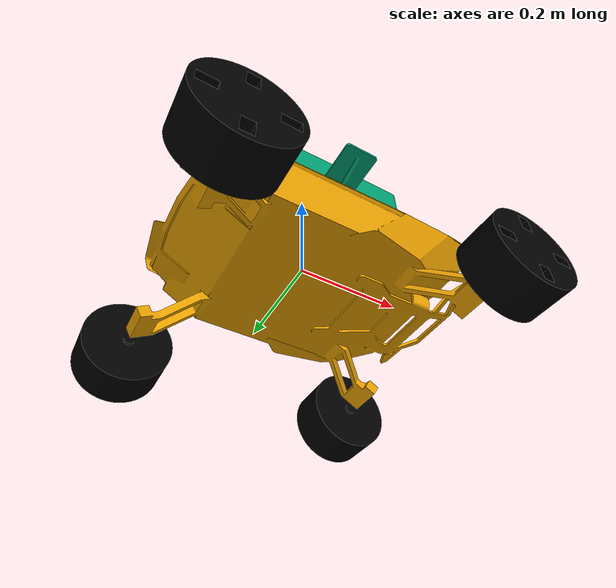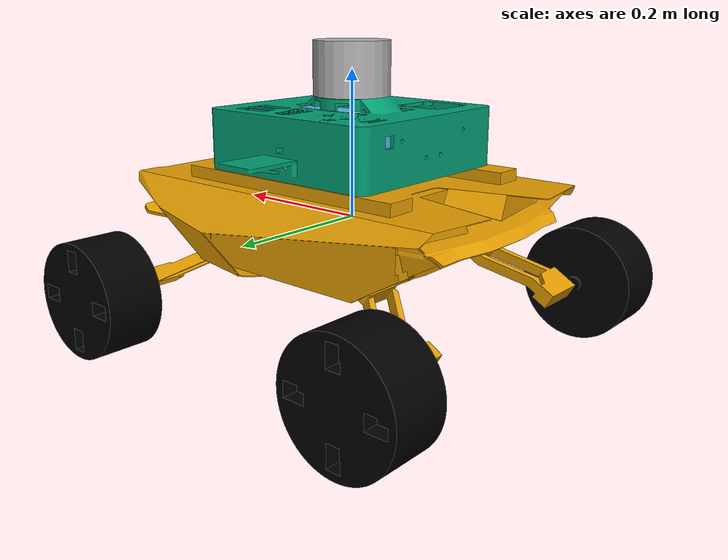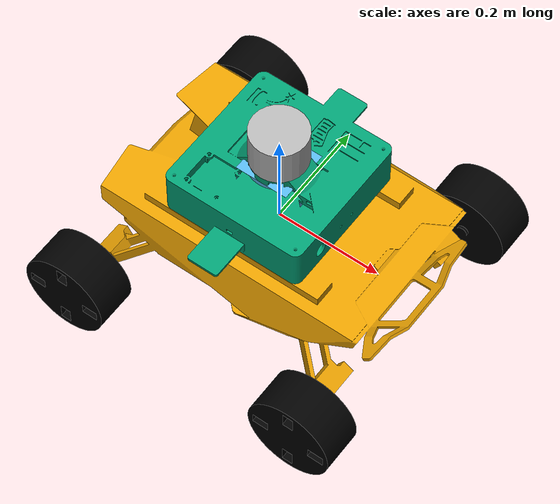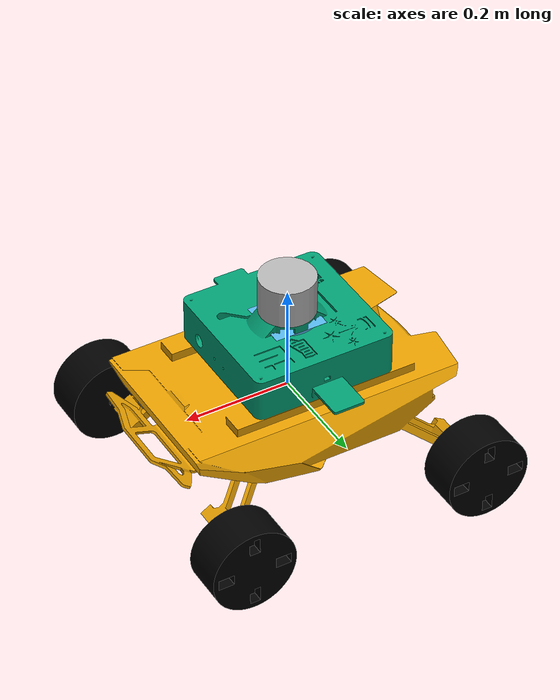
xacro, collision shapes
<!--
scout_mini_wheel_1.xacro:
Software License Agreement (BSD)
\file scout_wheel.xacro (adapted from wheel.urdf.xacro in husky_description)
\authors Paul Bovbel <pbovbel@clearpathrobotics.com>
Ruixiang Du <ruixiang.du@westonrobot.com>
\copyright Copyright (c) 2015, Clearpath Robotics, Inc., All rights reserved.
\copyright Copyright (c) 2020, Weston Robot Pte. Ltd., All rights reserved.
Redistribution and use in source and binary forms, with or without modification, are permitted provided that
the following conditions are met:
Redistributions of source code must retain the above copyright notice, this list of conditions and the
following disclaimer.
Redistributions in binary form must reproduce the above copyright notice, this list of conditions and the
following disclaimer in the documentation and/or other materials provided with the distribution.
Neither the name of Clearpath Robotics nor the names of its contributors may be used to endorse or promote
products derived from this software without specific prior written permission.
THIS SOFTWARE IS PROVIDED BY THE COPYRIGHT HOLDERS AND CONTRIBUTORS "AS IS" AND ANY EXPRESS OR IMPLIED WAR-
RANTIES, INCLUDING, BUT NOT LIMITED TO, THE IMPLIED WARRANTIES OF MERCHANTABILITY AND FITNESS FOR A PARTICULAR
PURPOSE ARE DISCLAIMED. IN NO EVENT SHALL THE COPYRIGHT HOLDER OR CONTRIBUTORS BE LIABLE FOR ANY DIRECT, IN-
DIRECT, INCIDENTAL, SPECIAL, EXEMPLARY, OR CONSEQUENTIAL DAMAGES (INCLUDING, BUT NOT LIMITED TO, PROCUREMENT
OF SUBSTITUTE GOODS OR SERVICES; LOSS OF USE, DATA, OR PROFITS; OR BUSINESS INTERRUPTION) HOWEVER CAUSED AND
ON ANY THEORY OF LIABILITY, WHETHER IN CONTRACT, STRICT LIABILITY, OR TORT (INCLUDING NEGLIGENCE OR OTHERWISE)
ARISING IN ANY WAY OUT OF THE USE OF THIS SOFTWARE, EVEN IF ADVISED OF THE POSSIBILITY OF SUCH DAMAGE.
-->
<?xml version="1.0"?>

<robot name="scout_mini"
    xmlns:xacro="http://ros.org/wiki/xacro">

    <xacro:arg name="robot_namespace" default="/" />
    <xacro:arg name="urdf_extras" default="empty.urdf" />

    <xacro:include filename="$(find scout_description)/urdf/scout_mini_wheel_1.xacro" />
    <xacro:include filename="$(find scout_description)/urdf/scout_mini_wheel_2.xacro" />
    <xacro:include filename="$(find scout_description)/urdf/scout_mini_wheel_3.xacro" />
    <xacro:include filename="$(find scout_description)/urdf/scout_mini_wheel_4.xacro" />
    <xacro:include filename="$(find scout_description)/urdf/box_agile.xacro"/>

    <!-- Variables -->
    <xacro:property name="M_PI" value="3.14159"/>

    <!-- Vehicle Geometries -->
    <xacro:property name="base_x_size" value="0.6200000" />
    <xacro:property name="base_y_size" value="0.585000" />
    <xacro:property name="base_z_size" value="0.235000" />

    <xacro:property name="wheelbase" value="0.463951"/>
    <xacro:property name="track" value="0.416503"/>
    <xacro:property name="wheel_vertical_offset" value="-0.100998" />

    <xacro:property name="wheel_length" value="0.8e-01" />
    <xacro:property name="wheel_radius" value="1.600e-01" />

    <!-- Base link -->
    <link name="base_link">
        <visual>
            <origin
                    xyz="0 0 0.0"
                    rpy="0 0 -1.57" />
            <geometry>
                <mesh filename="package://scout_description/meshes/scout_simple.stl" scale="0.001 0.001 0.001" />
            </geometry>
        </visual>
        <collision>
            <origin
                    xyz="0 0 0"
                    rpy="0 0 -1.57" />
          <geometry>
            <mesh
              filename="package://scout_description/meshes/scout_simple.stl" scale="0.001 0.001 0.001" />
          </geometry>
        </collision>
    </link>

    <link name="inertial_link">
        <inertial>
            <mass value="60" />
            <origin xyz="0.0 0.0 0.0" />
            <inertia ixx="2.288641" ixy="0" ixz="0" iyy="5.103976" iyz="0" izz="3.431465" />
        </inertial>
    </link>

    <joint name="inertial_joint" type="fixed">
        <origin xyz="0 0 0" rpy="0 0 0" />
        <parent link="base_link" />
        <child link="inertial_link" />
    </joint>

    <!-- For testing, hang the robot up in the air -->

    <!-- Agile Box initialization -->
    <xacro:box_agile>
    </xacro:box_agile>

    <!-- Scout wheel macros -->
    <!-- wheel labeled from 0 to 3, conter-clockwise, starting from front right wheel -->
    <!-- motor 1 and 2 (left side) are mechanically installed in a reversed direction -->

    <xacro:scout_mini_wheel_1 wheel_prefix="front_left">
        <origin xyz="${wheelbase/2} ${track/2} ${wheel_vertical_offset}" rpy="-1.57 0 0" />
    </xacro:scout_mini_wheel_1>

    <xacro:scout_mini_wheel_2 wheel_prefix="rear_left">
        <origin xyz="${-wheelbase/2} ${track/2} ${wheel_vertical_offset}" rpy="-1.57 0 0" />
    </xacro:scout_mini_wheel_2>
    <xacro:scout_mini_wheel_3 wheel_prefix="front_right">
        <origin xyz="${wheelbase/2} ${-track/2} ${wheel_vertical_offset+0.001}" rpy="1.57 0 0" />
    </xacro:scout_mini_wheel_3>
    <xacro:scout_mini_wheel_4 wheel_prefix="rear_right">
        <origin xyz="${-wheelbase/2} ${-track/2} ${wheel_vertical_offset+0.001}" rpy="1.57 0 0" />
    </xacro:scout_mini_wheel_4>

    <!-- Additional definitions -->
    <xacro:include filename="$(arg urdf_extras)" />

    <!-- Gazebo definitions  -->
    <xacro:include filename="$(find scout_description)/urdf/scout_mini.gazebo" />

  <xacro:arg name="gpu" default="false"/>
  <xacro:property name="gpu" value="$(arg gpu)" />
  <xacro:arg name="organize_cloud" default="false"/>
  <xacro:property name="organize_cloud" value="$(arg organize_cloud)" />

  <!-- Velodyne URDF, plugin, etc -->
  <xacro:include filename="$(find velodyne_description)/urdf/VLP-16.urdf.xacro"/>
  <xacro:VLP-16 parent="base_link" name="velodyne" topic="/velodyne_points" organize_cloud="${organize_cloud}" hz="10" samples="440" gpu="${gpu}">
    <origin xyz="0 0 0.1655" rpy="0 0 0" />
  </xacro:VLP-16>
    <!-- Gazebo requires the velodyne_gazebo_plugins package -->
<!-- IMU -->
<link name="imu_link">
  <inertial>
    <mass value="0.001"/>
    <origin rpy="0 0 0" xyz="0 0 0"/>
    <inertia ixx="0.0001" ixy="0" ixz="0" iyy="0.0001" iyz="0" izz="0.0001"/>
  </inertial>

  <visual>
    <origin rpy="0 0 0" xyz="0 0 0"/>
    <geometry>
      <box size="0.1 0.1 0.1"/>
    </geometry>
  </visual>

  <collision>
    <origin rpy="0 0 0" xyz="0 0 0"/>
    <geometry>
      <box size="0.1 0.1 0.1"/>
    </geometry>
  </collision>
</link>

<!-- IMU Joint -->
  <joint name="imu_joint" type="fixed">
    <axis xyz="1 0 0"/>
    <origin xyz="0 0 0.1"/>
    <parent link="base_link"/>
    <child link="imu_link"/>
  </joint>

    <gazebo>
    <plugin name="imu_controller" filename="libhector_gazebo_ros_imu.so">
      <robotNamespace>/</robotNamespace>
      <updateRate>50.0</updateRate>
      <bodyName>imu_link</bodyName>
      <topicName>imu/data</topicName>
      <accelDrift>0.005 0.005 0.005</accelDrift>
      <accelGaussianNoise>0.005 0.005 0.005</accelGaussianNoise>
      <rateDrift>0.005 0.005 0.005 </rateDrift>
      <rateGaussianNoise>0.005 0.005 0.005 </rateGaussianNoise>
      <headingDrift>0.005</headingDrift>
      <headingGaussianNoise>0.005</headingGaussianNoise>
    </plugin>
    </gazebo>

</robot>

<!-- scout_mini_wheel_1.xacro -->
<robot xmlns:xacro="http://ros.org/wiki/xacro" name="scout_wheel">

    <xacro:macro name="scout_mini_wheel_1" params="wheel_prefix *joint_pose">
        <link name="${wheel_prefix}_wheel_link">
            <inertial>
                <mass value="3" />
                <origin xyz="0 0 0" />
                <inertia ixx="0.7171" ixy="0" ixz="0" iyy="0.7171" iyz="0" izz="0.1361" />
            </inertial>
            <visual>
                <origin xyz="0 0 0" rpy="0 0 0" />
                <geometry>
                    <mesh filename="package://scout_description/meshes/wheel_simple_short.stl" scale="0.001 0.001 0.001" />
                </geometry>
                <material name="black">
                  <color rgba="0 0 0 1"/>
                </material>
            </visual>
            <collision>
              <origin
                xyz="0 0 0"
                rpy="0 0 0" />
              <geometry>
                <mesh
                  filename="package://scout_description/meshes/wheel_simple_short.stl" scale="0.001 0.001 0.001" />
              </geometry>
              <material name="black">
                <color rgba="0 0 0 1"/>
              </material>
            </collision>
        </link>

        <joint name="${wheel_prefix}_wheel" type="continuous">
            <parent link="base_link"/>
            <child link="${wheel_prefix}_wheel_link"/>
            <xacro:insert_block name="joint_pose"/>
            <axis xyz="0 0 -1" rpy="0 0 0" />
        </joint>
    </xacro:macro>

</robot>

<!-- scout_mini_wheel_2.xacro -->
<robot xmlns:xacro="http://ros.org/wiki/xacro" name="scout_wheel">

    <xacro:macro name="scout_mini_wheel_2" params="wheel_prefix *joint_pose">
        <link name="${wheel_prefix}_wheel_link">
            <inertial>
                <mass value="3" />
                <origin xyz="0 0 0" />
                <inertia ixx="0.7171" ixy="0" ixz="0" iyy="0.7171" iyz="0" izz="0.1361" />
            </inertial>
            <visual>
                <origin xyz="0 0 0" rpy="0 0 0" />
                <geometry>
                    <mesh filename="package://scout_description/meshes/wheel_simple_short.stl" scale="0.001 0.001 0.001" />
                </geometry>
                <material name="black">
                  <color rgba="0 0 0 1"/>
                </material>
            </visual>
            <collision>
              <origin
                xyz="0 0 0"
                rpy="0 0 0" />
              <geometry>
                <mesh
                  filename="package://scout_description/meshes/wheel_simple_short.stl" scale="0.001 0.001 0.001" />
              </geometry>
              <material name="black">
                  <color rgba="0 0 0 1"/>
                </material>
            </collision>
        </link>

        <joint name="${wheel_prefix}_wheel" type="continuous">
            <parent link="base_link"/>
            <child link="${wheel_prefix}_wheel_link"/>
            <xacro:insert_block name="joint_pose"/>
            <axis xyz="0 0 -1" rpy="0 0 0" />
        </joint>
    </xacro:macro>

</robot>

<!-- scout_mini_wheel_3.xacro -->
<robot xmlns:xacro="http://ros.org/wiki/xacro" name="scout_wheel">

    <xacro:macro name="scout_mini_wheel_3" params="wheel_prefix *joint_pose">
        <link name="${wheel_prefix}_wheel_link">
            <inertial>
                <mass value="3" />
                <origin xyz="0 0 0" />
                <inertia ixx="0.7171" ixy="0" ixz="0" iyy="0.7171" iyz="0" izz="0.1361" />
            </inertial>
            <visual>
                <origin xyz="0 0 0" rpy="0 0 0" />
                <geometry>
                    <mesh filename="package://scout_description/meshes/wheel_simple_short.stl" scale="0.001 0.001 0.001" />
                </geometry>
                <material name="black">
                  <color rgba="0 0 0 1"/>
                </material>
            </visual>
            <collision>
              <origin
                xyz="0 0 0"
                rpy="0 0 0" />
              <geometry>
                <mesh
                  filename="package://scout_description/meshes/wheel_simple_short.stl" scale="0.001 0.001 0.001" />
              </geometry>
              <material name="black">
                  <color rgba="0 0 0 1"/>
                </material>
            </collision>
        </link>

        <joint name="${wheel_prefix}_wheel" type="continuous">
            <parent link="base_link"/>
            <child link="${wheel_prefix}_wheel_link"/>
            <xacro:insert_block name="joint_pose"/>
            <axis xyz="0 0 -1" rpy="0 0 0" />
        </joint>
    </xacro:macro>

</robot>

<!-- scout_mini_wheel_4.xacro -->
<robot xmlns:xacro="http://ros.org/wiki/xacro" name="scout_wheel">

    <xacro:macro name="scout_mini_wheel_4" params="wheel_prefix *joint_pose">
        <link name="${wheel_prefix}_wheel_link">
        <inertial>
            <mass value="3" />
            <origin xyz="0 0 0" />
            <inertia ixx="0.7171" ixy="0" ixz="0" iyy="0.7171" iyz="0" izz="0.1361" />
        </inertial>
        <visual>
            <origin xyz="0 0 0" rpy="0 0 0" />
            <geometry>
                <mesh filename="package://scout_description/meshes/wheel_simple_short.stl" scale="0.001 0.001 0.001" />
            </geometry>
            <material name="black">
                  <color rgba="0 0 0 1"/>
                </material>
        </visual>
            <collision>
              <origin
                xyz="0 0 0"
                rpy="0 0 0" />
              <geometry>
                <mesh
                  filename="package://scout_description/meshes/wheel_simple_short.stl" scale="0.001 0.001 0.001" />
              </geometry>
              <material name="black">
                  <color rgba="0 0 0 1"/>
                </material>
            </collision>
        </link>

        <joint name="${wheel_prefix}_wheel" type="continuous">
            <parent link="base_link"/>
            <child link="${wheel_prefix}_wheel_link"/>
            <xacro:insert_block name="joint_pose"/>
            <axis xyz="0 0 -1" rpy="0 0 0" />
        </joint>
    </xacro:macro>

</robot>

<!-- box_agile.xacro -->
<robot xmlns:xacro="http://ros.org/wiki/xacro" name="box_agile">

<xacro:macro name="box_agile">
    <link name="core_box_base_link">
        <visual>
            <origin xyz="0 0 0.0219"
                    rpy="1.57 0 1.57" />
            <geometry>
                <mesh filename="package://scout_description/meshes/box_agile.stl" scale="0.001 0.001 0.001"/>
            </geometry>
        </visual>
        <collision>
        <origin
            xyz="0 0 0.0219"
            rpy="1.57 0 1.57" />
        <geometry>
            <mesh
            filename="package://scout_description/meshes/box_agile.stl" scale="0.001 0.001 0.001"/>
        </geometry>
        </collision>
    </link>

    <joint name="box_fix_joint" type="fixed">
        <origin
            xyz="0 0 0.0219"
            rpy="0 0 0" />
        <parent link="base_link"/>
        <child link="core_box_base_link"/>
    </joint>
</xacro:macro>

</robot>

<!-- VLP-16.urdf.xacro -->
<robot xmlns:xacro="http://www.ros.org/wiki/xacro" name="VLP-16">
  <xacro:property name="M_PI" value="3.1415926535897931" />
  <xacro:macro name="VLP-16" params="*origin is_sim:=true parent:=base_link name:=velodyne tf_prefix:='' topic:=/velodyne_points organize_cloud:=false hz:=10 lasers:=16 samples:=1875 collision_range:=0.3 min_range:=0.0 max_range:=100.0 noise:=0.008 min_angle:=-${M_PI} max_angle:=${M_PI} gpu:=false">

    <joint name="${name}_base_mount_joint" type="fixed">
      <xacro:insert_block name="origin" />
      <parent link="${parent}"/>
      <child link="${name}_base_link"/>
    </joint>

    <link name="${name}_base_link">
      <inertial>
        <mass value="0.83"/>
        <origin xyz="0 0 0.03585"/>
        <inertia ixx="${(0.83 * (3.0*0.0516*0.0516 + 0.0717*0.0717)) / 12.0}" ixy="0" ixz="0"
          iyy="${(0.83 * (3.0*0.0516*0.0516 + 0.0717*0.0717)) / 12.0}" iyz="0"
          izz="${0.5 * 0.83 * (0.0516*0.0516)}"/>
      </inertial>
      <visual>
        <geometry>
          <mesh filename="package://velodyne_description/meshes/VLP16_base_1.dae" />
        </geometry>
      </visual>
      <visual>
        <geometry>
          <mesh filename="package://velodyne_description/meshes/VLP16_base_2.dae" />
        </geometry>
      </visual>
      <collision>
        <origin rpy="0 0 0" xyz="0 0 0.03585"/>
        <geometry>
          <cylinder radius="0.0516" length="0.0717"/>
        </geometry>
      </collision>
    </link>

    <joint name="${name}_base_scan_joint" type="fixed" >
      <origin xyz="0 0 0.0377" rpy="0 0 0" />
      <parent link="${name}_base_link" />
      <child link="${name}"/>
    </joint>

    <link name="${name}">
      <inertial>
        <mass value="0.01"/>
        <origin xyz="0 0 0"/>
        <inertia ixx="1e-7" ixy="0" ixz="0" iyy="1e-7" iyz="0" izz="1e-7"/>
      </inertial>
      <visual>
        <origin xyz="0 0 -0.0377" />
        <geometry>
          <mesh filename="package://velodyne_description/meshes/VLP16_scan.dae" />
        </geometry>
      </visual>
      <collision>
        <geometry>
          <sphere radius="0"/>
        </geometry>
      </collision>
    </link>

    <!-- Gazebo requires the velodyne_gazebo_plugins package -->
    <xacro:if value="${is_sim}">
        <gazebo reference="${name}">
            <xacro:if value="${gpu}">
                <sensor type="gpu_ray" name="${name}-VLP16">
                <pose>0 0 0 0 0 0</pose>
                <visualize>false</visualize>
                <update_rate>${hz}</update_rate>
                <ray>
                    <scan>
                    <horizontal>
                        <samples>${samples}</samples>
                        <resolution>1</resolution>
                        <min_angle>${min_angle}</min_angle>
                        <max_angle>${max_angle}</max_angle>
                    </horizontal>
                    <vertical>
                        <samples>${lasers}</samples>
                        <resolution>1</resolution>
                        <min_angle>-${15.0*M_PI/180.0}</min_angle>
                        <max_angle> ${15.0*M_PI/180.0}</max_angle>
                    </vertical>
                    </scan>
                    <range>
                    <min>${collision_range}</min>
                    <max>${max_range+1}</max>
                    <resolution>0.001</resolution>
                    </range>
                    <noise>
                    <type>gaussian</type>
                    <mean>0.0</mean>
                    <stddev>0.0</stddev>
                    </noise>
                </ray>
                <plugin name="gazebo_ros_laser_controller" filename="libgazebo_ros_velodyne_laser.so">
                    <ros>
                    <namespace>/${name}</namespace>
                    <remapping>~/out:=${topic}</remapping>
                    </ros>
                    <tf_prefix>${tf_prefix}</tf_prefix>
                    <frame_name>${name}</frame_name>
                    <organize_cloud>${organize_cloud}</organize_cloud>
                    <min_range>${min_range}</min_range>
                    <max_range>${max_range}</max_range>
                    <gaussian_noise>${noise}</gaussian_noise>
                </plugin>
                </sensor>
            </xacro:if>
            <xacro:unless value="${gpu}">
                <sensor type="ray" name="${name}-VLP16">
                <pose>0 0 0 0 0 0</pose>
                <visualize>false</visualize>
                <update_rate>${hz}</update_rate>
                <ray>
                    <scan>
                    <horizontal>
                        <samples>${samples}</samples>
                        <resolution>1</resolution>
                        <min_angle>${min_angle}</min_angle>
                        <max_angle>${max_angle}</max_angle>
                    </horizontal>
                    <vertical>
                        <samples>${lasers}</samples>
                        <resolution>1</resolution>
                        <min_angle>-${15.0*M_PI/180.0}</min_angle>
                        <max_angle> ${15.0*M_PI/180.0}</max_angle>
                    </vertical>
                    </scan>
                    <range>
                    <min>${collision_range}</min>
                    <max>${max_range+1}</max>
                    <resolution>0.001</resolution>
                    </range>
                    <noise>
                    <type>gaussian</type>
                    <mean>0.0</mean>
                    <stddev>0.0</stddev>
                    </noise>
                </ray>
                <plugin name="gazebo_ros_laser_controller" filename="libgazebo_ros_velodyne_laser.so">
                    <ros>
                    <namespace>/${name}</namespace>
                    <remapping>~/out:=${topic}</remapping>
                    </ros>
                    <tf_prefix>${tf_prefix}</tf_prefix>
                    <frame_name>${name}</frame_name>
                    <organize_cloud>${organize_cloud}</organize_cloud>
                    <min_range>${min_range}</min_range>
                    <max_range>${max_range}</max_range>
                    <gaussian_noise>${noise}</gaussian_noise>
                </plugin>
                </sensor>
            </xacro:unless>
        </gazebo>
    </xacro:if>

  </xacro:macro>
</robot>
